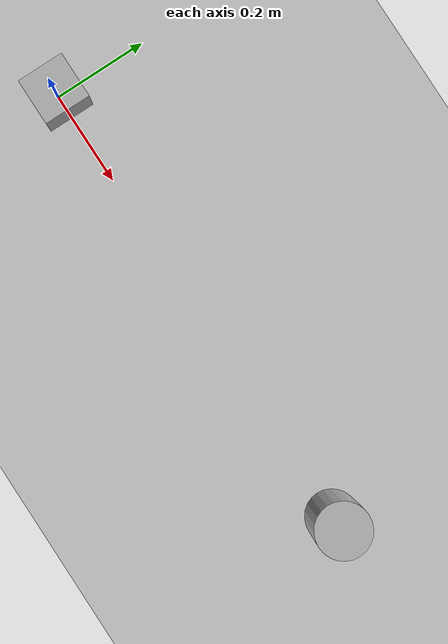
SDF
<sdf version="1.5">
 <world name="default">
  <light name="sun" type="directional">
   <pose>0 0 10 0 -0 0</pose>
   <diffuse>0.8 0.8 0.8 1</diffuse>
   <specular>0.2 0.2 0.2 1</specular>
   <attenuation>
    <range>1000</range>
    <constant>0.9</constant>
    <linear>0.01</linear>
    <quadratic>0.001</quadratic>
   </attenuation>
   <direction>-0.5 0.1 -0.9</direction>
  </light>
  <model name="ground_plane">
   <static>1</static>
   <link name="link">
    <collision name="collision">
     <geometry><plane><normal>0 0 1</normal><size>100 100</size></plane></geometry>
     <surface><friction><ode><mu>100</mu><mu2>50</mu2></ode></friction></surface>
    </collision>
    <visual name="visual">
     <cast_shadows>0</cast_shadows>
     <geometry><plane><normal>0 0 1</normal><size>100 100</size></plane></geometry>
     <material>
      <script><uri>file://media/materials/scripts/gazebo.material</uri><name>Gazebo/Grey</name></script>
     </material>
    </visual>
    <velocity_decay><linear>0</linear><angular>0</angular></velocity_decay>
   </link>
  </model>
  <physics type="ode">
   <max_step_size>0.001</max_step_size>
   <real_time_factor>1</real_time_factor>
   <real_time_update_rate>1000</real_time_update_rate>
   <gravity>0 0 -9.8</gravity>
  </physics>
  <scene><ambient>0.4 0.4 0.4 1</ambient><background>0.7 0.7 0.7 1</background><shadows>1</shadows></scene>
  <audio><device>default</device></audio>
  <spherical_coordinates>
   <surface_model>EARTH_WGS84</surface_model>
   <latitude_deg>0</latitude_deg>
   <longitude_deg>0</longitude_deg>
   <elevation>0</elevation>
   <heading_deg>0</heading_deg>
  </spherical_coordinates>
  <model name="stereocamera">
   <link name="link">
    <pose>0.05 0.05 0.05 0 -0 0</pose>
    <gravity>0</gravity>
    <inertial>
     <mass>1e-05</mass>
     <inertia><ixx>1</ixx><ixy>0</ixy><ixz>0</ixz><iyy>1</iyy><iyz>0</iyz><izz>1</izz></inertia>
    </inertial>
    <collision name="collision"><geometry><box><size>0.1 0.1 0.1</size></box></geometry></collision>
    <visual name="visual"><geometry><box><size>0.1 0.1 0.1</size></box></geometry></visual>
    <sensor name="camera" type="multicamera">
     <always_on>1</always_on>
     <update_rate>30</update_rate>
     <visualize>0</visualize>
     <camera name="left">
      <pose>0 0.2 0 0 -0 0</pose>
      <horizontal_fov>1.047</horizontal_fov>
      <image><width>640</width><height>480</height></image>
      <clip><near>0.1</near><far>100</far></clip>
     </camera>
     <camera name="right">
      <pose>0 -0.2 0 0 -0 0</pose>
      <horizontal_fov>1.047</horizontal_fov>
      <image><width>640</width><height>480</height></image>
      <clip><near>0.1</near><far>100</far></clip>
     </camera>
     <plugin name="multicamera_plugin" filename="libgazebo_ros_multicamera.so">
      <robotNamespace>/rover/bumblebee</robotNamespace>
      <hackBaseline>1</hackBaseline>
     </plugin>
    </sensor>
    <velocity_decay><linear>0</linear><angular>0</angular></velocity_decay>
   </link>
   <pose>-0.05 -0.05 0 0 -0 0</pose>
   <plugin name="stereo_helper_plugin" filename="libstereo_helper_plugin.so"/>
  </model>
  <model name="beer">
   <link name="link">
    <pose>0 0 0.115 0 -0 0</pose>
    <inertial>
     <mass>0.39</mass>
     <inertia><ixx>0.00058</ixx><ixy>0</ixy><ixz>0</ixz><iyy>0.00058</iyy><iyz>0</iyz><izz>0.00019</izz></inertia>
    </inertial>
    <collision name="collision">
     <geometry><cylinder><radius>0.055</radius><length>0.23</length></cylinder></geometry>
    </collision>
    <visual name="visual">
     <geometry><cylinder><radius>0.055</radius><length>0.23</length></cylinder></geometry>
     <material>
      <script>
       <uri>model://beer/materials/scripts</uri>
       <uri>model://beer/materials/textures</uri>
       <name>Beer/Diffuse</name>
      </script>
     </material>
    </visual>
    <velocity_decay><linear>0</linear><angular>0</angular></velocity_decay>
   </link>
   <pose>1 -0 -2e-06 1e-06 -0 -1e-06</pose>
  </model>
 </world>
</sdf>
